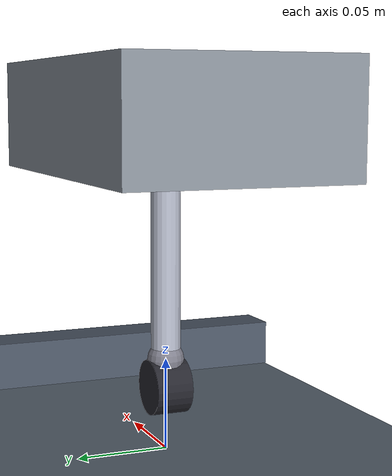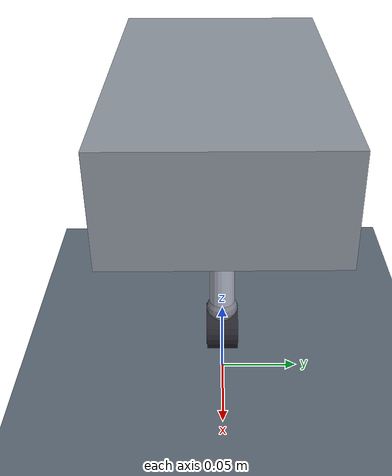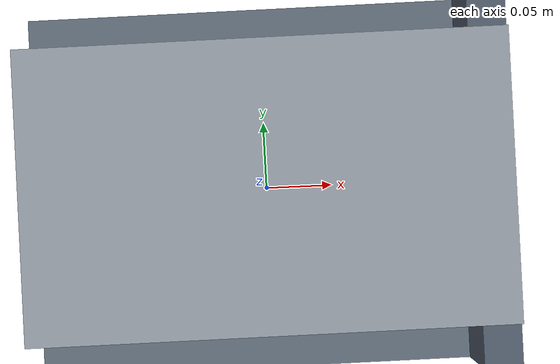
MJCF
<mujoco model="tachikoma_leg_single_v2">
  <compiler angle="radian" autolimits="true"/>
  <option timestep="0.002" gravity="0 0 -9.81" integrator="implicitfast"/>

  <visual>
    <headlight diffuse="0.6 0.6 0.6" ambient="0.3 0.3 0.3"/>
    <rgba haze="0.15 0.25 0.35 1"/>
    <global azimuth="130" elevation="-20"/>
  </visual>

  <default>
    <!-- 既定は衝突しない(contype=0). 接地するのはホイールだけにし、
         脚ロッド⇔車体⇔ホイールの自己衝突を排除する -->
    <geom friction="1.0 0.02 0.001" density="500" contype="0" conaffinity="0"/>
    <joint damping="0.02" armature="0.003"/>
  </default>

  <worldbody>
    <light pos="0 0 1.2" dir="0 0 -1" diffuse="0.8 0.8 0.8"/>
    <geom name="floor" type="plane" size="0 0 0.05" pos="0 0 0"
          rgba="0.35 0.4 0.45 1" friction="1.2 0.02 0.001"
          contype="1" conaffinity="1"/>

    <!-- 3cm 段差 (要件 §6). x=0.15 から先が 3cm 高い plateau。
         ホイールは +x 方向から接近して乗り上げ、そのまま上を走り続ける
         (遠端の落下イベントを避け、純粋な"上り"トルクを測るため広く取る) -->
    <geom name="step" type="box" pos="5.15 0 0.015" size="5.0 0.30 0.015"
          rgba="0.30 0.34 0.40 1" friction="1.2 0.02 0.001"
          contype="1" conaffinity="1"/>

    <!-- ================= 車体(荷重台) + 脚1本 ================= -->
    <body name="carriage" pos="0 0 0.18">
      <!-- 前進(受動: ホイール牽引で動く) と 上下(受動: 重力vs脚支持) -->
      <joint name="slide_x" type="slide" axis="1 0 0" damping="0.8"/>
      <joint name="slide_z" type="slide" axis="0 0 1" damping="0.5"/>
      <!-- 車体1本ぶんの荷重. 既定 1.5kg (torque_probe.py で上書き可) -->
      <inertial pos="0 0 0" mass="1.5" diaginertia="0.006 0.006 0.004"/>
      <geom name="body_geom" type="box" size="0.10 0.06 0.03" rgba="0.55 0.58 0.62 1"
            density="0"/>

      <!-- (1) 股ヨー: 能動・剛 (操舵). 矢状面テストでは 0 に保持 -->
      <body name="yaw" pos="0 0 -0.03">
        <joint name="hip_yaw" type="hinge" axis="0 0 1" range="-1.57 1.57" damping="0.1"/>
        <!-- ヨー機構(ブラケット+サーボ)ぶんの小質量 -->
        <inertial pos="0 0 -0.01" mass="0.03" diaginertia="1e-5 1e-5 1e-5"/>

        <!-- (2) 股ピッチ: 能動・剛 (主軸/重量支持/段差). ★トルク実測対象★ -->
        <body name="leg" pos="0 0 0">
          <joint name="hip_pitch" type="hinge" axis="0 1 0" range="-1.4 1.4" damping="0.1"/>
          <!-- 膝なしの棒一本. 軽量(density低) = 脚先を軽く俊敏に -->
          <geom name="leg_rod" type="capsule" fromto="0 0 0  0 0 -0.10" size="0.008"
                rgba="0.7 0.72 0.78 1" density="400"/>

          <!-- (3) 足首ショックアブソーバー: 受動 slide ばね (脚軸方向に伸縮) -->
          <body name="ankle" pos="0 0 -0.10">
            <joint name="ankle_sus" type="slide" axis="0 0 1" range="-0.002 0.020"
                   stiffness="2500" damping="40" springref="0"/>
            <geom name="ankle_geom" type="sphere" size="0.010" rgba="0.5 0.5 0.55 1"/>

            <!-- (4) 脚先ホイール: 能動駆動 (普通ホイール, 径3cm=半径0.015固定).
                 段差3cmと同高のため転がり越えは原理的に不可 → 脚で越える(要件§4) -->
            <body name="wheel" pos="0 0 -0.015">
              <joint name="wheel_spin" type="hinge" axis="0 1 0" damping="0.01"/>
              <geom name="wheel_geom" type="cylinder" fromto="0 -0.010 0  0 0.010 0"
                    size="0.015" rgba="0.15 0.15 0.18 1"
                    friction="1.6 0.02 0.001" density="800"
                    contype="1" conaffinity="1"
                    solref="0.005 1" solimp="0.95 0.99 0.001"/>
            </body>
          </body>
        </body>
      </body>
    </body>
  </worldbody>

  <!-- ================= アクチュエータ (能動12軸のうち脚1本ぶん3軸) ============ -->
  <actuator>
    <!-- 股ヨー: 位置サーボ -->
    <position name="hip_yaw_pos" joint="hip_yaw" kp="20" kv="1"
              ctrlrange="-1.57 1.57" forcerange="-4 4"/>
    <!-- 股ピッチ: 位置サーボ. forcerange は実トルクを飽和させない広さ(±20 N·m).
         実測ピークがこの範囲に収まっていれば飽和なし=有効な計測 -->
    <position name="hip_pitch_pos" joint="hip_pitch" kp="60" kv="3"
              ctrlrange="-1.4 1.4" forcerange="-20 20"/>
    <!-- 脚先ホイール: 速度サーボ (rad/s). kv 高め + forcerange で
         「目標速度まで一定のストールトルク(±1.5 N·m)を出せるギヤードモータ」を近似。
         これで駆動トルク容量が目標速度に依存せず、径スタディの交絡を防ぐ -->
    <velocity name="wheel_drive" joint="wheel_spin" kv="1.5" ctrlrange="-60 60"
              forcerange="-1.5 1.5"/>
  </actuator>

  <keyframe>
    <!-- 脚を軽く前へ振った姿勢で着地. qpos=[slide_x,slide_z,yaw,pitch,ankle,wheel] -->
    <key name="home" qpos="0 0 0 0.30 0 0" ctrl="0 0.30 0"/>
  </keyframe>
</mujoco>
